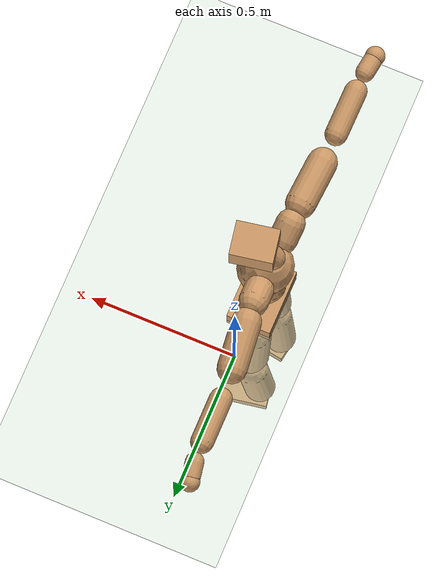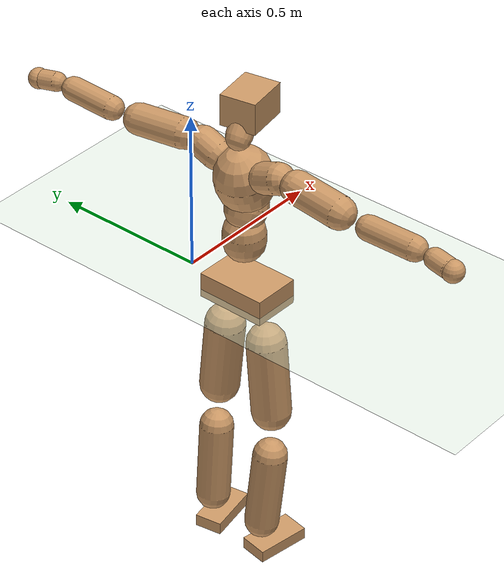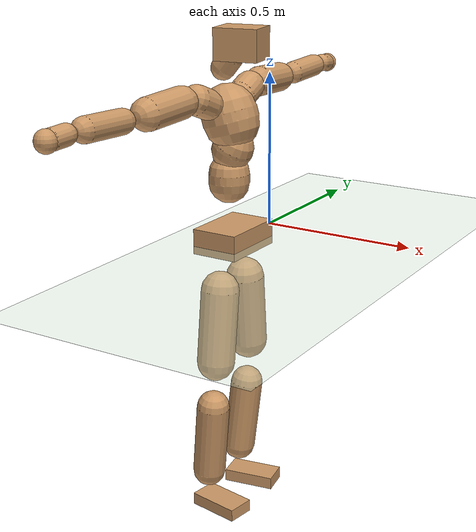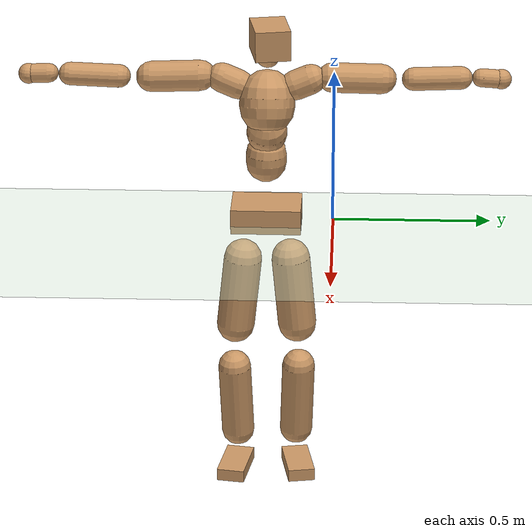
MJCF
<mujoco model="humanoid">
  <compiler coordinate="local" angle="radian"/>
  <default>
    <joint damping="0.0" armature="0.01" stiffness="0.0" limited="true"/>
    <geom conaffinity="1" condim="3" contype="7" margin="0.001" rgba="0.8 0.6 .4 1"/>
  </default>
  <asset>
    <texture type="skybox" builtin="gradient" rgb1=".4 .5 .6" rgb2="0 0 0" width="100" height="100"/>
    <texture builtin="flat" height="1278" mark="cross" markrgb="1 1 1" name="texgeom" random="0.01" rgb1="0.8 0.6 0.4" rgb2="0.8 0.6 0.4" type="cube" width="127"/>
    <texture builtin="checker" height="100" name="texplane" rgb1="0 0 0" rgb2="0.8 0.8 0.8" type="2d" width="100"/>
    <material name="MatPlane" reflectance="0.5" shininess="1" specular="1" texrepeat="60 60" texture="texplane"/>
    <material name="geom" texture="texgeom" texuniform="true"/>
  </asset>
  <worldbody>
    <light cutoff="100" diffuse="1 1 1" dir="-0 0 -1.3" directional="true" exponent="1" pos="0 0 1.3" specular=".1 .1 .1"/>
    <geom conaffinity="1" condim="3" name="floor" pos="0 0 0" rgba="0.8 0.9 0.8 1" size="100 100 .2" type="plane" material="MatPlane"/>
    <body name="Pelvis" pos="0.0007 -0.2125 0.0261">
      <freejoint name="Pelvis"/>
      <geom type="box" contype="1" conaffinity="1" density="500" pos="-0.0064 0.0001 -0.0128" size="0.0753 0.1114 0.0402" quat="1.0000 0.0000 0.0000 -0.0055" name="Pelvis"/>
      <body name="L_Hip" pos="-0.0113 0.0706 -0.0922">
        <joint name="L_Hip_x" type="hinge" pos="0 0 0" axis="1 0 0" stiffness="800" damping="80" armature="0.02" range="-180.0000 180.0000"/>
        <joint name="L_Hip_y" type="hinge" pos="0 0 0" axis="0 1 0" stiffness="800" damping="80" armature="0.02" range="-180.0000 180.0000"/>
        <joint name="L_Hip_z" type="hinge" pos="0 0 0" axis="0 0 1" stiffness="800" damping="80" armature="0.02" range="-180.0000 180.0000"/>
        <geom type="capsule" contype="1" conaffinity="1" density="500" fromto="-0.0004 0.0071 -0.0776 -0.0017 0.0286 -0.3105" size="0.0616" name="L_Hip"/>
        <body name="L_Knee" pos="-0.0022 0.0357 -0.3881">
          <joint name="L_Knee_x" type="hinge" pos="0 0 0" axis="1 0 0" stiffness="800" damping="80" armature="0.02" range="-180.0000 180.0000"/>
          <joint name="L_Knee_y" type="hinge" pos="0 0 0" axis="0 1 0" stiffness="800" damping="80" armature="0.02" range="-180.0000 180.0000"/>
          <joint name="L_Knee_z" type="hinge" pos="0 0 0" axis="0 0 1" stiffness="800" damping="80" armature="0.02" range="-180.0000 180.0000"/>
          <geom type="capsule" contype="1" conaffinity="1" density="500" fromto="-0.0089 -0.0025 -0.0813 -0.0358 -0.0101 -0.3252" size="0.053" name="L_Knee"/>
          <body name="L_Ankle" pos="-0.0447 -0.0126 -0.4065">
            <joint name="L_Ankle_x" type="hinge" pos="0 0 0" axis="1 0 0" stiffness="800" damping="80" armature="0.02" range="-180.0000 180.0000"/>
            <joint name="L_Ankle_y" type="hinge" pos="0 0 0" axis="0 1 0" stiffness="800" damping="80" armature="0.02" range="-180.0000 180.0000"/>
            <joint name="L_Ankle_z" type="hinge" pos="0 0 0" axis="0 0 1" stiffness="800" damping="80" armature="0.02" range="-180.0000 180.0000"/>
            <geom type="box" contype="1" conaffinity="1" density="500" pos="0.0593 0.0102 -0.0279" size="0.0844 0.0432 0.0203" quat="0.9964 0.0000 0.0000 0.0848" name="L_Ankle"/>
            <body name="L_Toe" pos="0.1187 0.0204 -0.0558">
              <joint name="L_Toe_x" type="hinge" pos="0 0 0" axis="1 0 0" stiffness="500" damping="50" armature="0.02" range="-180.0000 180.0000"/>
              <joint name="L_Toe_y" type="hinge" pos="0 0 0" axis="0 1 0" stiffness="500" damping="50" armature="0.02" range="-180.0000 180.0000"/>
              <joint name="L_Toe_z" type="hinge" pos="0 0 0" axis="0 0 1" stiffness="500" damping="50" armature="0.02" range="-180.0000 180.0000"/>
              <geom type="box" contype="1" conaffinity="1" density="500" pos="0.0000 0.0000 0.0275" size="0.0009 0.0022 0.001" quat="0.9958 0.0000 0.0000 0.0915" name="L_Toe"/>
            </body>
          </body>
        </body>
      </body>
      <body name="R_Hip" pos="-0.0079 -0.0678 -0.091">
        <joint name="R_Hip_x" type="hinge" pos="0 0 0" axis="1 0 0" stiffness="800" damping="80" armature="0.02" range="-180.0000 180.0000"/>
        <joint name="R_Hip_y" type="hinge" pos="0 0 0" axis="0 1 0" stiffness="800" damping="80" armature="0.02" range="-180.0000 180.0000"/>
        <joint name="R_Hip_z" type="hinge" pos="0 0 0" axis="0 0 1" stiffness="800" damping="80" armature="0.02" range="-180.0000 180.0000"/>
        <geom type="capsule" contype="1" conaffinity="1" density="500" fromto="-0.0010 -0.0081 -0.0793 -0.0041 -0.0325 -0.3173" size="0.0608" name="R_Hip"/>
        <body name="R_Knee" pos="-0.0051 -0.0406 -0.3966">
          <joint name="R_Knee_x" type="hinge" pos="0 0 0" axis="1 0 0" stiffness="800" damping="80" armature="0.02" range="-180.0000 180.0000"/>
          <joint name="R_Knee_y" type="hinge" pos="0 0 0" axis="0 1 0" stiffness="800" damping="80" armature="0.02" range="-180.0000 180.0000"/>
          <joint name="R_Knee_z" type="hinge" pos="0 0 0" axis="0 0 1" stiffness="800" damping="80" armature="0.02" range="-180.0000 180.0000"/>
          <geom type="capsule" contype="1" conaffinity="1" density="500" fromto="-0.0085 0.0031 -0.0813 -0.0341 0.0125 -0.3252" size="0.0533" name="R_Knee"/>
          <body name="R_Ankle" pos="-0.0426 0.0156 -0.4065">
            <joint name="R_Ankle_x" type="hinge" pos="0 0 0" axis="1 0 0" stiffness="800" damping="80" armature="0.02" range="-180.0000 180.0000"/>
            <joint name="R_Ankle_y" type="hinge" pos="0 0 0" axis="0 1 0" stiffness="800" damping="80" armature="0.02" range="-180.0000 180.0000"/>
            <joint name="R_Ankle_z" type="hinge" pos="0 0 0" axis="0 0 1" stiffness="800" damping="80" armature="0.02" range="-180.0000 180.0000"/>
            <geom type="box" contype="1" conaffinity="1" density="500" pos="0.0607 -0.0100 -0.0242" size="0.0856 0.0446 0.0199" quat="0.9967 0.0000 0.0000 -0.0813" name="R_Ankle"/>
            <body name="R_Toe" pos="0.1214 -0.0199 -0.0484">
              <joint name="R_Toe_x" type="hinge" pos="0 0 0" axis="1 0 0" stiffness="500" damping="50" armature="0.02" range="-180.0000 180.0000"/>
              <joint name="R_Toe_y" type="hinge" pos="0 0 0" axis="0 1 0" stiffness="500" damping="50" armature="0.02" range="-180.0000 180.0000"/>
              <joint name="R_Toe_z" type="hinge" pos="0 0 0" axis="0 0 1" stiffness="500" damping="50" armature="0.02" range="-180.0000 180.0000"/>
              <geom type="box" contype="1" conaffinity="1" density="500" pos="0.0000 0.0000 0.0257" size="0.0008 0.0022 0.0011" quat="0.9974 0.0000 0.0000 -0.0721" name="R_Toe"/>
            </body>
          </body>
        </body>
      </body>
      <body name="Torso" pos="-0.0191 -0.0024 0.1063">
        <joint name="Torso_x" type="hinge" pos="0 0 0" axis="1 0 0" stiffness="1000" damping="100" armature="0.02" range="-180.0000 180.0000"/>
        <joint name="Torso_y" type="hinge" pos="0 0 0" axis="0 1 0" stiffness="1000" damping="100" armature="0.02" range="-180.0000 180.0000"/>
        <joint name="Torso_z" type="hinge" pos="0 0 0" axis="0 0 1" stiffness="1000" damping="100" armature="0.02" range="-180.0000 180.0000"/>
        <geom type="capsule" contype="1" conaffinity="1" density="500" fromto="-0.0008 0.0017 0.0827 -0.0005 0.0012 0.0551" size="0.0646" name="Torso"/>
        <body name="Spine" pos="-0.0013 0.0029 0.1379">
          <joint name="Spine_x" type="hinge" pos="0 0 0" axis="1 0 0" stiffness="1000" damping="100" armature="0.02" range="-180.0000 180.0000"/>
          <joint name="Spine_y" type="hinge" pos="0 0 0" axis="0 1 0" stiffness="1000" damping="100" armature="0.02" range="-180.0000 180.0000"/>
          <joint name="Spine_z" type="hinge" pos="0 0 0" axis="0 0 1" stiffness="1000" damping="100" armature="0.02" range="-180.0000 180.0000"/>
          <geom type="capsule" contype="1" conaffinity="1" density="500" fromto="0.0154 0.0012 0.0291 0.0103 0.0008 0.0194" size="0.0643" name="Spine"/>
          <body name="Chest" pos="0.0257 0.0021 0.0485">
            <joint name="Chest_x" type="hinge" pos="0 0 0" axis="1 0 0" stiffness="1000" damping="100" armature="0.02" range="-180.0000 180.0000"/>
            <joint name="Chest_y" type="hinge" pos="0 0 0" axis="0 1 0" stiffness="1000" damping="100" armature="0.02" range="-180.0000 180.0000"/>
            <joint name="Chest_z" type="hinge" pos="0 0 0" axis="0 0 1" stiffness="1000" damping="100" armature="0.02" range="-180.0000 180.0000"/>
            <geom type="capsule" contype="1" conaffinity="1" density="500" fromto="-0.0261 -0.0004 0.0886 -0.0174 -0.0003 0.0591" size="0.0876" name="Chest"/>
            <body name="Neck" pos="-0.0544 -0.0006 0.2086">
              <joint name="Neck_x" type="hinge" pos="0 0 0" axis="1 0 0" stiffness="500" damping="50" armature="0.02" range="-180.0000 180.0000"/>
              <joint name="Neck_y" type="hinge" pos="0 0 0" axis="0 1 0" stiffness="500" damping="50" armature="0.02" range="-180.0000 180.0000"/>
              <joint name="Neck_z" type="hinge" pos="0 0 0" axis="0 0 1" stiffness="500" damping="50" armature="0.02" range="-180.0000 180.0000"/>
              <geom type="capsule" contype="1" conaffinity="1" density="500" fromto="0.0089 0.0012 0.0115 0.0355 0.0050 0.0459" size="0.0385" name="Neck"/>
              <body name="Head" pos="0.0444 0.0062 0.0574">
                <joint name="Head_x" type="hinge" pos="0 0 0" axis="1 0 0" stiffness="500" damping="50" armature="0.02" range="-180.0000 180.0000"/>
                <joint name="Head_y" type="hinge" pos="0 0 0" axis="0 1 0" stiffness="500" damping="50" armature="0.02" range="-180.0000 180.0000"/>
                <joint name="Head_z" type="hinge" pos="0 0 0" axis="0 0 1" stiffness="500" damping="50" armature="0.02" range="-180.0000 180.0000"/>
                <geom type="box" contype="1" conaffinity="1" density="500" pos="0.0232 0.0041 0.0297" size="0.0692 0.0555 0.0486" quat="0.9962 0.0000 0.0000 0.0876" name="Head"/>
              </body>
            </body>
            <body name="L_Thorax" pos="-0.035 0.0717 0.1186">
              <joint name="L_Thorax_x" type="hinge" pos="0 0 0" axis="1 0 0" stiffness="500" damping="50" armature="0.02" range="-180.0000 180.0000"/>
              <joint name="L_Thorax_y" type="hinge" pos="0 0 0" axis="0 1 0" stiffness="500" damping="50" armature="0.02" range="-180.0000 180.0000"/>
              <joint name="L_Thorax_z" type="hinge" pos="0 0 0" axis="0 0 1" stiffness="500" damping="50" armature="0.02" range="-180.0000 180.0000"/>
              <geom type="capsule" contype="1" conaffinity="1" density="500" fromto="-0.0005 0.0161 0.0068 -0.0022 0.0645 0.0272" size="0.0474" name="L_Thorax"/>
              <body name="L_Shoulder" pos="-0.0027 0.0806 0.034">
                <joint name="L_Shoulder_x" type="hinge" pos="0 0 0" axis="1 0 0" stiffness="500" damping="50" armature="0.02" range="-720.0000 720.0000"/>
                <joint name="L_Shoulder_y" type="hinge" pos="0 0 0" axis="0 1 0" stiffness="500" damping="50" armature="0.02" range="-720.0000 720.0000"/>
                <joint name="L_Shoulder_z" type="hinge" pos="0 0 0" axis="0 0 1" stiffness="500" damping="50" armature="0.02" range="-720.0000 720.0000"/>
                <geom type="capsule" contype="1" conaffinity="1" density="500" fromto="-0.0051 0.0512 -0.0028 -0.0202 0.2050 -0.0114" size="0.0473" name="L_Shoulder"/>
                <body name="L_Elbow" pos="-0.0253 0.2562 -0.0142">
                  <joint name="L_Elbow_x" type="hinge" pos="0 0 0" axis="1 0 0" stiffness="500" damping="50" armature="0.02" range="-720.0000 720.0000"/>
                  <joint name="L_Elbow_y" type="hinge" pos="0 0 0" axis="0 1 0" stiffness="500" damping="50" armature="0.02" range="-720.0000 720.0000"/>
                  <joint name="L_Elbow_z" type="hinge" pos="0 0 0" axis="0 0 1" stiffness="500" damping="50" armature="0.02" range="-720.0000 720.0000"/>
                  <geom type="capsule" contype="1" conaffinity="1" density="500" fromto="-0.0000 0.0494 0.0019 -0.0001 0.1974 0.0077" size="0.0366" name="L_Elbow"/>
                  <body name="L_Wrist" pos="-0.0002 0.2468 0.0096">
                    <joint name="L_Wrist_x" type="hinge" pos="0 0 0" axis="1 0 0" stiffness="300" damping="30" armature="0.02" range="-180.0000 180.0000"/>
                    <joint name="L_Wrist_y" type="hinge" pos="0 0 0" axis="0 1 0" stiffness="300" damping="30" armature="0.02" range="-180.0000 180.0000"/>
                    <joint name="L_Wrist_z" type="hinge" pos="0 0 0" axis="0 0 1" stiffness="300" damping="30" armature="0.02" range="-180.0000 180.0000"/>
                    <geom type="capsule" contype="1" conaffinity="1" density="500" fromto="-0.0027 0.0158 -0.0019 -0.0107 0.0630 -0.0078" size="0.0295" name="L_Wrist"/>
                    <body name="L_Hand" pos="-0.0134 0.0788 -0.0097">
                      <joint name="L_Hand_x" type="hinge" pos="0 0 0" axis="1 0 0" stiffness="300" damping="30" armature="0.02" range="-180.0000 180.0000"/>
                      <joint name="L_Hand_y" type="hinge" pos="0 0 0" axis="0 1 0" stiffness="300" damping="30" armature="0.02" range="-180.0000 180.0000"/>
                      <joint name="L_Hand_z" type="hinge" pos="0 0 0" axis="0 0 1" stiffness="300" damping="30" armature="0.02" range="-180.0000 180.0000"/>
                      <geom type="sphere" contype="1" conaffinity="1" density="500" size="0.0317" pos="0.0000 0.0000 0.0000" name="L_Hand"/>
                    </body>
                  </body>
                </body>
              </body>
            </body>
            <body name="R_Thorax" pos="-0.041 -0.0733 0.116">
              <joint name="R_Thorax_x" type="hinge" pos="0 0 0" axis="1 0 0" stiffness="500" damping="50" armature="0.02" range="-180.0000 180.0000"/>
              <joint name="R_Thorax_y" type="hinge" pos="0 0 0" axis="0 1 0" stiffness="500" damping="50" armature="0.02" range="-180.0000 180.0000"/>
              <joint name="R_Thorax_z" type="hinge" pos="0 0 0" axis="0 0 1" stiffness="500" damping="50" armature="0.02" range="-180.0000 180.0000"/>
              <geom type="capsule" contype="1" conaffinity="1" density="500" fromto="-0.0013 -0.0175 0.0071 -0.0054 -0.0698 0.0285" size="0.0467" name="R_Thorax"/>
              <body name="R_Shoulder" pos="-0.0067 -0.0873 0.0356">
                <joint name="R_Shoulder_x" type="hinge" pos="0 0 0" axis="1 0 0" stiffness="500" damping="50" armature="0.02" range="-720.0000 720.0000"/>
                <joint name="R_Shoulder_y" type="hinge" pos="0 0 0" axis="0 1 0" stiffness="500" damping="50" armature="0.02" range="-720.0000 720.0000"/>
                <joint name="R_Shoulder_z" type="hinge" pos="0 0 0" axis="0 0 1" stiffness="500" damping="50" armature="0.02" range="-720.0000 720.0000"/>
                <geom type="capsule" contype="1" conaffinity="1" density="500" fromto="-0.0035 -0.0513 -0.0032 -0.0140 -0.2051 -0.0128" size="0.0488" name="R_Shoulder"/>
                <body name="R_Elbow" pos="-0.0175 -0.2564 -0.016">
                  <joint name="R_Elbow_x" type="hinge" pos="0 0 0" axis="1 0 0" stiffness="500" damping="50" armature="0.02" range="-720.0000 720.0000"/>
                  <joint name="R_Elbow_y" type="hinge" pos="0 0 0" axis="0 1 0" stiffness="500" damping="50" armature="0.02" range="-720.0000 720.0000"/>
                  <joint name="R_Elbow_z" type="hinge" pos="0 0 0" axis="0 0 1" stiffness="500" damping="50" armature="0.02" range="-720.0000 720.0000"/>
                  <geom type="capsule" contype="1" conaffinity="1" density="500" fromto="-0.0012 -0.0516 0.0016 -0.0047 -0.2062 0.0063" size="0.0366" name="R_Elbow"/>
                  <body name="R_Wrist" pos="-0.0059 -0.2578 0.0078">
                    <joint name="R_Wrist_x" type="hinge" pos="0 0 0" axis="1 0 0" stiffness="300" damping="30" armature="0.02" range="-180.0000 180.0000"/>
                    <joint name="R_Wrist_y" type="hinge" pos="0 0 0" axis="0 1 0" stiffness="300" damping="30" armature="0.02" range="-180.0000 180.0000"/>
                    <joint name="R_Wrist_z" type="hinge" pos="0 0 0" axis="0 0 1" stiffness="300" damping="30" armature="0.02" range="-180.0000 180.0000"/>
                    <geom type="capsule" contype="1" conaffinity="1" density="500" fromto="-0.0021 -0.0162 -0.0014 -0.0085 -0.0649 -0.0057" size="0.0305" name="R_Wrist"/>
                    <body name="R_Hand" pos="-0.0106 -0.0812 -0.0072">
                      <joint name="R_Hand_x" type="hinge" pos="0 0 0" axis="1 0 0" stiffness="300" damping="30" armature="0.02" range="-180.0000 180.0000"/>
                      <joint name="R_Hand_y" type="hinge" pos="0 0 0" axis="0 1 0" stiffness="300" damping="30" armature="0.02" range="-180.0000 180.0000"/>
                      <joint name="R_Hand_z" type="hinge" pos="0 0 0" axis="0 0 1" stiffness="300" damping="30" armature="0.02" range="-180.0000 180.0000"/>
                      <geom type="sphere" contype="1" conaffinity="1" density="500" size="0.0324" pos="0.0000 0.0000 0.0000" name="R_Hand"/>
                    </body>
                  </body>
                </body>
              </body>
            </body>
          </body>
        </body>
      </body>
    </body>
  </worldbody>
  <actuator>
    <motor name="L_Hip_x" joint="L_Hip_x" gear="500"/>
    <motor name="L_Hip_y" joint="L_Hip_y" gear="500"/>
    <motor name="L_Hip_z" joint="L_Hip_z" gear="500"/>
    <motor name="L_Knee_x" joint="L_Knee_x" gear="500"/>
    <motor name="L_Knee_y" joint="L_Knee_y" gear="500"/>
    <motor name="L_Knee_z" joint="L_Knee_z" gear="500"/>
    <motor name="L_Ankle_x" joint="L_Ankle_x" gear="500"/>
    <motor name="L_Ankle_y" joint="L_Ankle_y" gear="500"/>
    <motor name="L_Ankle_z" joint="L_Ankle_z" gear="500"/>
    <motor name="L_Toe_x" joint="L_Toe_x" gear="500"/>
    <motor name="L_Toe_y" joint="L_Toe_y" gear="500"/>
    <motor name="L_Toe_z" joint="L_Toe_z" gear="500"/>
    <motor name="R_Hip_x" joint="R_Hip_x" gear="500"/>
    <motor name="R_Hip_y" joint="R_Hip_y" gear="500"/>
    <motor name="R_Hip_z" joint="R_Hip_z" gear="500"/>
    <motor name="R_Knee_x" joint="R_Knee_x" gear="500"/>
    <motor name="R_Knee_y" joint="R_Knee_y" gear="500"/>
    <motor name="R_Knee_z" joint="R_Knee_z" gear="500"/>
    <motor name="R_Ankle_x" joint="R_Ankle_x" gear="500"/>
    <motor name="R_Ankle_y" joint="R_Ankle_y" gear="500"/>
    <motor name="R_Ankle_z" joint="R_Ankle_z" gear="500"/>
    <motor name="R_Toe_x" joint="R_Toe_x" gear="500"/>
    <motor name="R_Toe_y" joint="R_Toe_y" gear="500"/>
    <motor name="R_Toe_z" joint="R_Toe_z" gear="500"/>
    <motor name="Torso_x" joint="Torso_x" gear="500"/>
    <motor name="Torso_y" joint="Torso_y" gear="500"/>
    <motor name="Torso_z" joint="Torso_z" gear="500"/>
    <motor name="Spine_x" joint="Spine_x" gear="500"/>
    <motor name="Spine_y" joint="Spine_y" gear="500"/>
    <motor name="Spine_z" joint="Spine_z" gear="500"/>
    <motor name="Chest_x" joint="Chest_x" gear="500"/>
    <motor name="Chest_y" joint="Chest_y" gear="500"/>
    <motor name="Chest_z" joint="Chest_z" gear="500"/>
    <motor name="Neck_x" joint="Neck_x" gear="500"/>
    <motor name="Neck_y" joint="Neck_y" gear="500"/>
    <motor name="Neck_z" joint="Neck_z" gear="500"/>
    <motor name="Head_x" joint="Head_x" gear="500"/>
    <motor name="Head_y" joint="Head_y" gear="500"/>
    <motor name="Head_z" joint="Head_z" gear="500"/>
    <motor name="L_Thorax_x" joint="L_Thorax_x" gear="500"/>
    <motor name="L_Thorax_y" joint="L_Thorax_y" gear="500"/>
    <motor name="L_Thorax_z" joint="L_Thorax_z" gear="500"/>
    <motor name="L_Shoulder_x" joint="L_Shoulder_x" gear="500"/>
    <motor name="L_Shoulder_y" joint="L_Shoulder_y" gear="500"/>
    <motor name="L_Shoulder_z" joint="L_Shoulder_z" gear="500"/>
    <motor name="L_Elbow_x" joint="L_Elbow_x" gear="500"/>
    <motor name="L_Elbow_y" joint="L_Elbow_y" gear="500"/>
    <motor name="L_Elbow_z" joint="L_Elbow_z" gear="500"/>
    <motor name="L_Wrist_x" joint="L_Wrist_x" gear="500"/>
    <motor name="L_Wrist_y" joint="L_Wrist_y" gear="500"/>
    <motor name="L_Wrist_z" joint="L_Wrist_z" gear="500"/>
    <motor name="L_Hand_x" joint="L_Hand_x" gear="500"/>
    <motor name="L_Hand_y" joint="L_Hand_y" gear="500"/>
    <motor name="L_Hand_z" joint="L_Hand_z" gear="500"/>
    <motor name="R_Thorax_x" joint="R_Thorax_x" gear="500"/>
    <motor name="R_Thorax_y" joint="R_Thorax_y" gear="500"/>
    <motor name="R_Thorax_z" joint="R_Thorax_z" gear="500"/>
    <motor name="R_Shoulder_x" joint="R_Shoulder_x" gear="500"/>
    <motor name="R_Shoulder_y" joint="R_Shoulder_y" gear="500"/>
    <motor name="R_Shoulder_z" joint="R_Shoulder_z" gear="500"/>
    <motor name="R_Elbow_x" joint="R_Elbow_x" gear="500"/>
    <motor name="R_Elbow_y" joint="R_Elbow_y" gear="500"/>
    <motor name="R_Elbow_z" joint="R_Elbow_z" gear="500"/>
    <motor name="R_Wrist_x" joint="R_Wrist_x" gear="500"/>
    <motor name="R_Wrist_y" joint="R_Wrist_y" gear="500"/>
    <motor name="R_Wrist_z" joint="R_Wrist_z" gear="500"/>
    <motor name="R_Hand_x" joint="R_Hand_x" gear="500"/>
    <motor name="R_Hand_y" joint="R_Hand_y" gear="500"/>
    <motor name="R_Hand_z" joint="R_Hand_z" gear="500"/>
  </actuator>
  <contact>
    <exclude body1="Torso" body2="Chest"/>
    <exclude body1="Head" body2="Chest"/>
    <exclude body1="R_Knee" body2="R_Toe"/>
    <exclude body1="R_Knee" body2="L_Ankle"/>
    <exclude body1="R_Knee" body2="L_Toe"/>
    <exclude body1="L_Knee" body2="L_Toe"/>
    <exclude body1="L_Knee" body2="R_Ankle"/>
    <exclude body1="L_Knee" body2="R_Toe"/>
    <exclude body1="L_Shoulder" body2="Chest"/>
    <exclude body1="R_Shoulder" body2="Chest"/>
  </contact>
  <sensor/>
  <size njmax="700" nconmax="700"/>
</mujoco>
